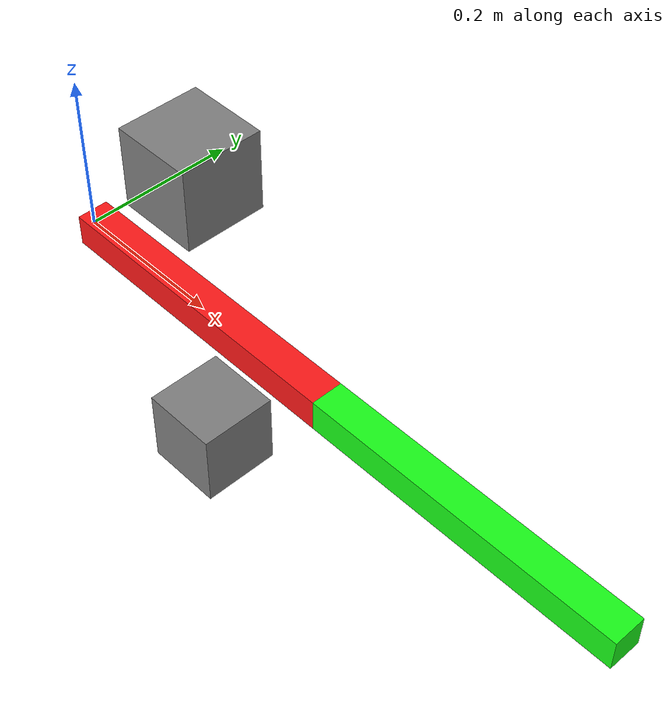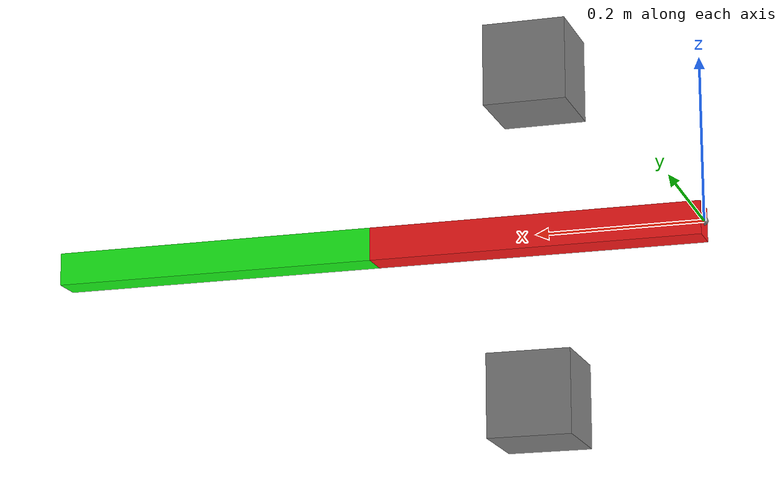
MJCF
<mujoco model="test_ext">
    <worldbody>
        <body name="base" pos="0 0 0">
            <body name="arm1" pos="0.2 0 0">
                <joint name="joint1" type="hinge" pos="-0.2 0 0" axis="0 1 0" limited="true" range="-180 180" damping="10" frictionloss="0.1"/>
                <site name="sensor_site1" pos="-0.2 0 0"/>
                <geom type="box" name="arm1" pos="0 0 0" size="0.2 0.02 0.02" rgba="1 0.1 0.1 1"/>
                <body name="arm2" pos="0.4 0 0">
                    <joint name="joint2" type="hinge" pos="-0.2 0 0" axis="0 1 0" limited="true" range="-180 180" damping="10" frictionloss="0.1"/>
                    <site name="sensor_site2" pos="-0.2 0 0"/>
                    <geom type="box" name="arm2" pos="0 0 0" size="0.2 0.02 0.02" rgba="0.1 1 0.1 1"/>
                </body>
            </body>
        </body>
        <body name="test" pos="0.2 0 0.2">
            <geom name="test" type="box" size="0.05 0.05 0.05"/>
        </body>
        <body name="test2" pos="0.2 0 -0.2">
            <geom name="test2" type="box" size="0.05 0.05 0.05"/>
        </body>
    </worldbody>
    <actuator>
        <intvelocity name="vel1" joint="joint1" ctrllimited="true" ctrlrange="-0.1 0.1" actrange="-3.141 3.141"
                     kp="1000" forcelimited="true" forcerange="-10 10"/>
        <intvelocity name="vel2" joint="joint2" ctrllimited="true" ctrlrange="-0.1 0.1" actrange="-3.131 3.141"
                     kp="1000" forcelimited="true" forcerange="-10 10"/>
    </actuator>
    <sensor>
        <torque name="torque1" site="sensor_site1"/>
        <torque name="torque2" site="sensor_site2"/>
    </sensor>
</mujoco>
